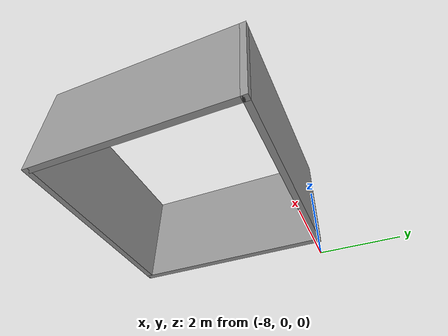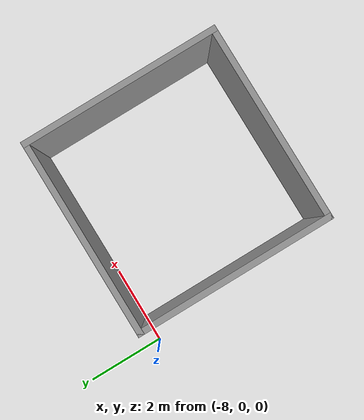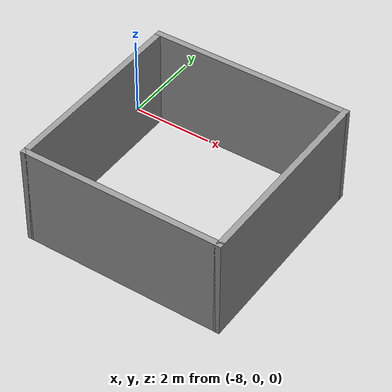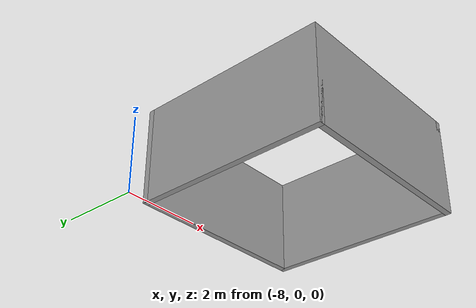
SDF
<?xml version='1.0'?>
<sdf version='1.7'>
  <model name='walls'>
    <pose>-3.7289 -2.35855 0 0 -0 0</pose>
    <link name='Wall_14'>
      <collision name='Wall_14_Collision'>
        <geometry>
          <box>
            <size>5 0.15 2.5</size>
          </box>
        </geometry>
        <pose>0 0 1.25 0 -0 0</pose>
      </collision>
      <visual name='Wall_14_Visual'>
        <pose>0 0 1.25 0 -0 0</pose>
        <geometry>
          <box>
            <size>5 0.15 2.5</size>
          </box>
        </geometry>
        <material>
          <script>
            <uri>file://media/materials/scripts/gazebo.material</uri>
            <name>Gazebo/Grey</name>
          </script>
          <ambient>1 1 1 1</ambient>
        </material>
        <meta>
          <layer>0</layer>
        </meta>
      </visual>
      <pose>-3.6539 0 0 0 -0 -1.5708</pose>
    </link>
    <link name='Wall_15'>
      <collision name='Wall_15_Collision'>
        <geometry>
          <box>
            <size>5 0.15 2.5</size>
          </box>
        </geometry>
        <pose>0 0 1.25 0 -0 0</pose>
      </collision>
      <visual name='Wall_15_Visual'>
        <pose>0 0 1.25 0 -0 0</pose>
        <geometry>
          <box>
            <size>5 0.15 2.5</size>
          </box>
        </geometry>
        <material>
          <script>
            <uri>file://media/materials/scripts/gazebo.material</uri>
            <name>Gazebo/Grey</name>
          </script>
          <ambient>1 1 1 1</ambient>
        </material>
        <meta>
          <layer>0</layer>
        </meta>
      </visual>
      <pose>-1.2289 -2.425 0 0 -0 0</pose>
    </link>
    <link name='Wall_16'>
      <collision name='Wall_16_Collision'>
        <geometry>
          <box>
            <size>5 0.15 2.5</size>
          </box>
        </geometry>
        <pose>0 0 1.25 0 -0 0</pose>
      </collision>
      <visual name='Wall_16_Visual'>
        <pose>0 0 1.25 0 -0 0</pose>
        <geometry>
          <box>
            <size>5 0.15 2.5</size>
          </box>
        </geometry>
        <material>
          <script>
            <uri>file://media/materials/scripts/gazebo.material</uri>
            <name>Gazebo/Grey</name>
          </script>
          <ambient>1 1 1 1</ambient>
        </material>
        <meta>
          <layer>0</layer>
        </meta>
      </visual>
      <pose>1.1961 0 0 0 -0 1.5708</pose>
    </link>
    <link name='Wall_17'>
      <collision name='Wall_17_Collision'>
        <geometry>
          <box>
            <size>5 0.15 2.5</size>
          </box>
        </geometry>
        <pose>0 0 1.25 0 -0 0</pose>
      </collision>
      <visual name='Wall_17_Visual'>
        <pose>0 0 1.25 0 -0 0</pose>
        <geometry>
          <box>
            <size>5 0.15 2.5</size>
          </box>
        </geometry>
        <material>
          <script>
            <uri>file://media/materials/scripts/gazebo.material</uri>
            <name>Gazebo/Grey</name>
          </script>
          <ambient>1 1 1 1</ambient>
        </material>
        <meta>
          <layer>0</layer>
        </meta>
      </visual>
      <pose>-1.2289 2.425 0 0 -0 3.14159</pose>
    </link>
    <static>1</static>
  </model>
</sdf>
